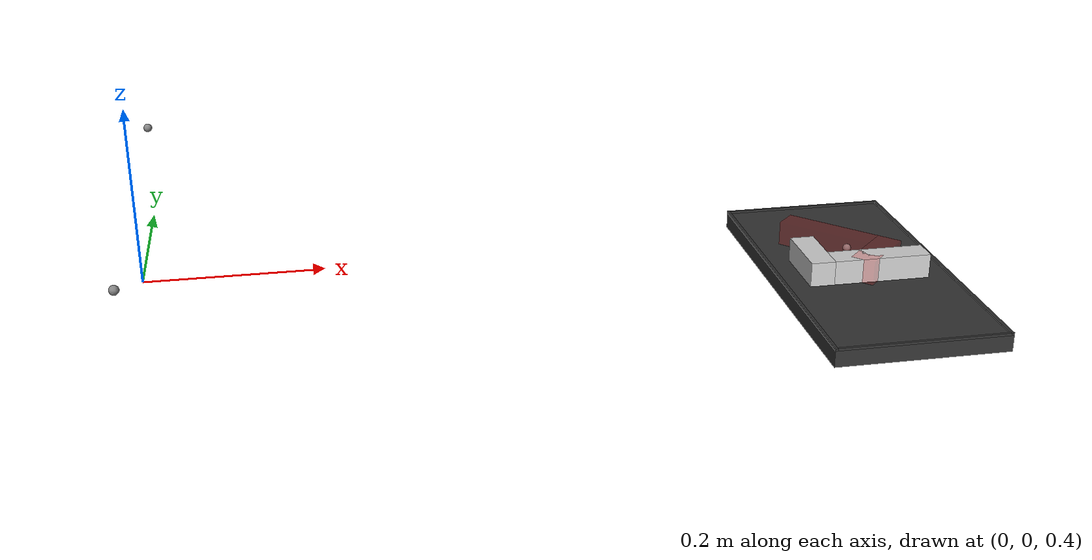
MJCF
<mujoco model="arena">
  <compiler angle="radian"/>
  <asset>
    <texture type="skybox" builtin="flat"  width="1" height="1" rgb1="1 1 1" rgb2="1 1 1" />
    <texture name='groundplane' type='2d' builtin='checker' rgb1='.2 .3 .4' rgb2='.1 .2 .3' width='300' height='300' mark='edge' markrgb='.8 .8 .8'/>
    <material name='groundplane' texture='groundplane' texrepeat='5 5' texuniform='true' reflectance='.2'/>
  </asset>

  <worldbody>
    <site name="left" pos="0 0.24 0.5" quat="0.5 -0.5  0.5 -0.5" />
    <site name="right" pos="0 -0.24 0.5" quat="0.5 0.5 0.5 0.5" />
    <light directional='true' diffuse='.7 .7 .7' pos='1 .1 2' dir='0 -.1 -2' specular='.3 .3 .3' castshadow='true'/>
    <body pos=".845 0.015 .34" name="plane">
      <geom name="plane" type="box" pos="0 0 -.01" size=".105 .205 .01" rgba=".2 .2 .2 1" />
      <geom name="side_a" type="box" pos=".1035 0 .0015" size=".0015 .205 .0015" rgba=".2 .2 .2 1" />
      <geom name="side_b" type="box" pos="-.1035 0 .0015" size=".0015 .205 .0015" rgba=".2 .2 .2 1" />
      <geom name="side_c" type="box" pos="0 .2035 .0015" size=".102 .0015 .0015" rgba=".2 .2 .2 1" />
      <geom name="side_d" type="box" pos="0 -.2035 .0015" size=".102 .0015 .0015" rgba=".2 .2 .2 1" />
      <joint name="plane" type="hinge" axis="1 0 0" pos="0 0 -0.0225" range="-0.1990 0.1990" />
      <body name="object" pos="-.075 .04 0">
        <joint name="x" type="slide" axis="1 0 0" frictionloss="100" />
        <joint name="y" type="slide" axis="0 1 0" frictionloss="100" />
        <joint name="theta" type="hinge" axis="0 0 1" pos="0.06 -0.055 0.015" frictionloss="2" />
        <site name="object" pos="0.06 -0.055 0.015" />
        <geom type="box" mass="0.142" name="object_1" size=".015 .04 .015" pos="0.015 -0.04 0.015" rgba=".8 .8 .8 1" />
        <geom type="box" mass="0.213" name="object_2" size=".06 .015 .015" pos=".09 -.065 0.015" rgba=".8 .8 .8 1" />
      </body>

      <body name="goal" pos="0 -0.05 0" euler="0 0 2.356">
        <site name="goal" pos="0.06 -0.055 0.015" />
        <geom type="box" size=".015 .04 .015" pos="0.015 -0.04 0.015" conaffinity="0" contype="0" rgba="1 0 0 .1" />
        <geom type="box" size=".06 .015 .015" pos=".09 -.065 0.015" conaffinity="0" contype="0" rgba="1 0 0 .1" />
      </body>

    </body>
  </worldbody>
  <contact>
    <pair geom1="object_1" geom2="side_a" />
    <pair geom1="object_1" geom2="side_b" />
    <pair geom1="object_1" geom2="side_c" />
    <pair geom1="object_1" geom2="side_d" />
    <pair geom1="object_2" geom2="side_a" />
    <pair geom1="object_2" geom2="side_b" />
    <pair geom1="object_2" geom2="side_c" />
    <pair geom1="object_2" geom2="side_d" />
  </contact>
</mujoco>
